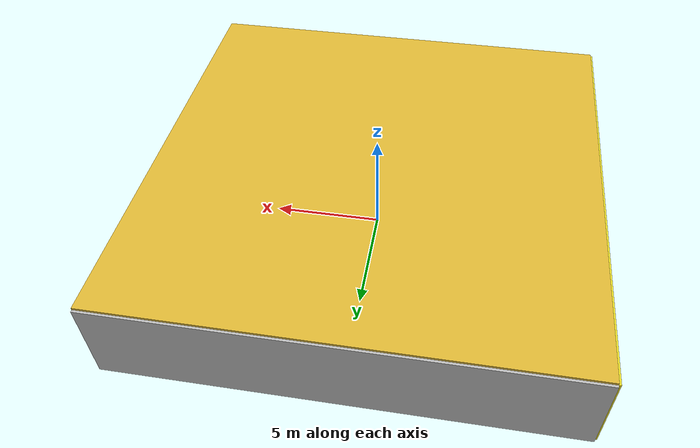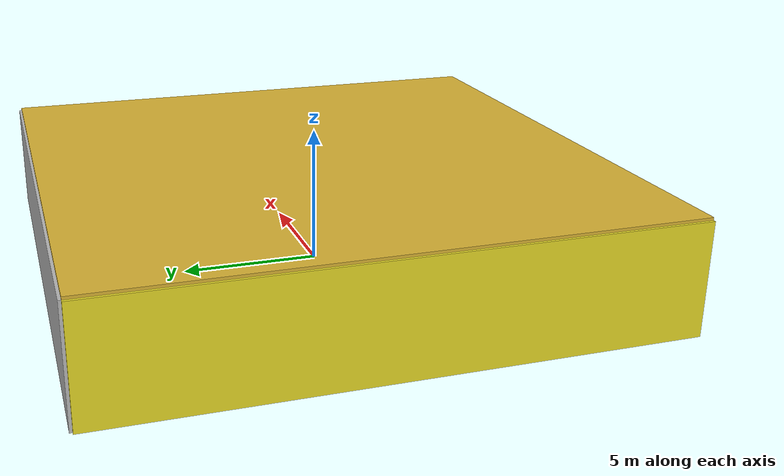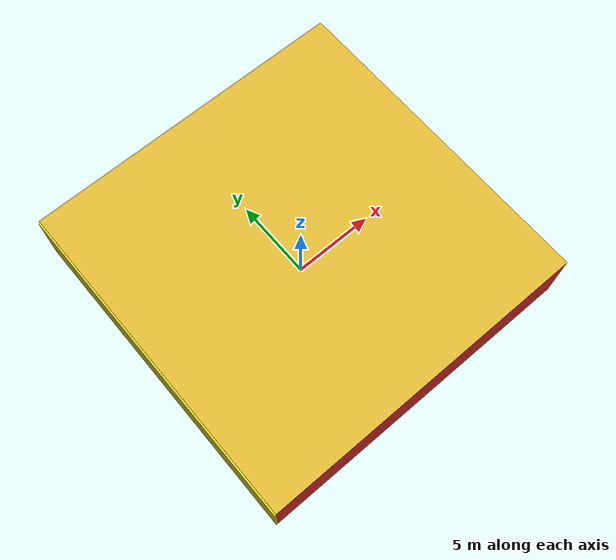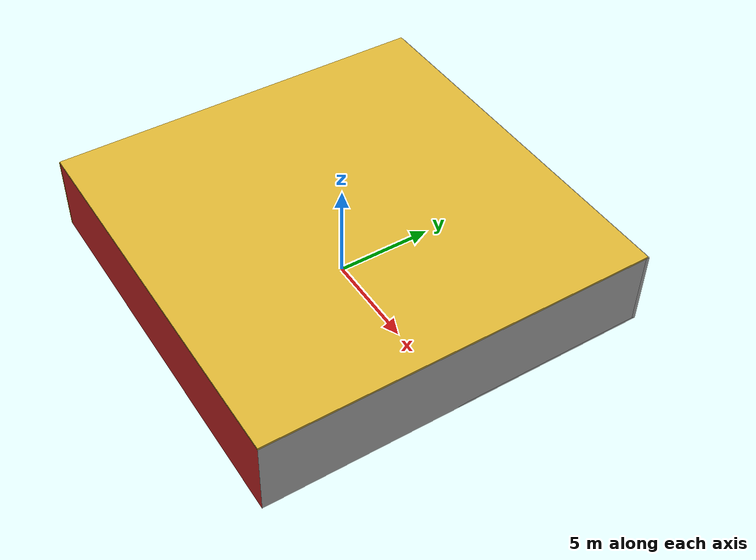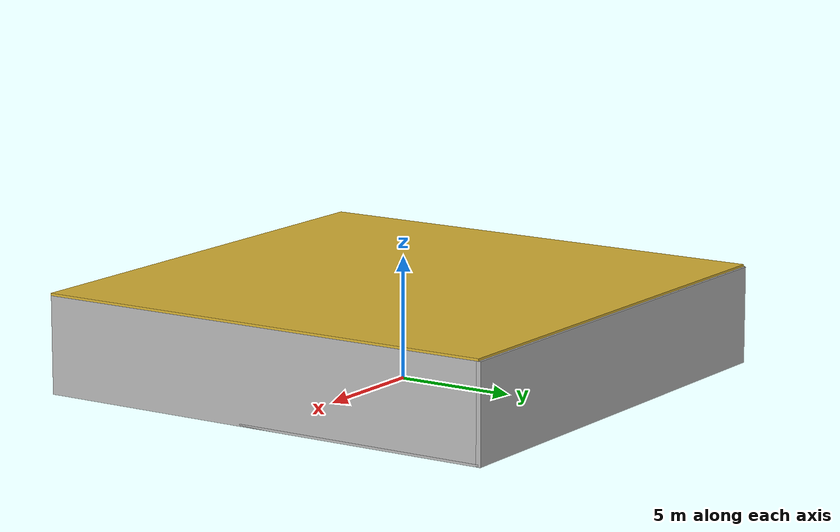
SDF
<sdf version="1.4">
 <world name="default">
  <physics type="ode">
   <max_step_size>0.001</max_step_size>
   <real_time_factor>1</real_time_factor>
   <real_time_update_rate>1000</real_time_update_rate>
   <gravity>0 0 -9.8</gravity>
  </physics>
  <scene><ambient>0.4 0.4 0.4 1</ambient><background>0.7 0.7 0.7 1</background><shadows>1</shadows></scene>
  <model name="Surrounding">
   <static>1</static>
   <link name="Ceiling">
    <collision name="Ceiling_Collision"><geometry><box><size>20 20 0.1</size></box></geometry></collision>
    <visual name="Ceiling_Visual">
     <geometry><box><size>20 20 0.1</size></box></geometry>
     <material>
      <script><uri>file://media/materials/scripts/gazebo.material</uri><name>Gazebo/Gold</name></script>
     </material>
    </visual>
    <pose>0 0 4.05 0 0 0</pose>
   </link>
   <link name="Wall_South">
    <collision name="Wall_South_Collision">
     <geometry><box><size>20 0 4</size></box></geometry>
     <pose>0 0 2 0 -0 0</pose>
    </collision>
    <visual name="Wall_South_Visual">
     <pose>0 0 2 0 -0 0</pose>
     <geometry><box><size>20 0 4</size></box></geometry>
     <material>
      <script><uri>file://media/materials/scripts/gazebo.material</uri><name>Gazebo/RedBright</name></script>
     </material>
    </visual>
    <velocity_decay><linear>0</linear><angular>0</angular></velocity_decay>
    <pose>0 -10 0 0 -0 0</pose>
   </link>
   <link name="Wall_East">
    <collision name="Wall_21_Collision">
     <geometry><box><size>20 0 4</size></box></geometry>
     <pose>0 0 2 0 -0 0</pose>
    </collision>
    <visual name="Wall_21_Visual">
     <pose>0 0 2 0 -0 0</pose>
     <geometry><box><size>20 0 4</size></box></geometry>
     <material>
      <script><uri>file://media/materials/scripts/gazebo.material</uri><name>Gazebo/LightOff</name></script>
     </material>
    </visual>
    <velocity_decay><linear>0</linear><angular>0</angular></velocity_decay>
    <pose>10 0 0 0 -0 1.5708</pose>
   </link>
   <link name="Wall_North">
    <collision name="Wall_22_Collision">
     <geometry><box><size>20 0.2 4</size></box></geometry>
     <pose>0 0 2 0 -0 0</pose>
    </collision>
    <visual name="Wall_22_Visual">
     <pose>0 0 2 0 -0 0</pose>
     <geometry><box><size>20 0.2 4</size></box></geometry>
     <material>
      <script><uri>file://media/materials/scripts/gazebo.material</uri><name>Gazebo/CloudySky</name></script>
     </material>
    </visual>
    <velocity_decay><linear>0</linear><angular>0</angular></velocity_decay>
    <pose>0 10 0 0 -0 0</pose>
   </link>
   <link name="Wall_West">
    <collision name="Wall_23_Collision">
     <geometry><box><size>20 0.2 4</size></box></geometry>
     <pose>0 0 2 0 -0 0</pose>
    </collision>
    <visual name="Wall_23_Visual">
     <pose>0 0 2 0 -0 0</pose>
     <geometry><box><size>20 0.2 4</size></box></geometry>
     <material>
      <script><uri>file://media/materials/scripts/gazebo.material</uri><name>Gazebo/YellowGlow</name></script>
     </material>
    </visual>
    <velocity_decay><linear>0</linear><angular>0</angular></velocity_decay>
    <pose>-10 0 0 0 0 -1.5708</pose>
   </link>
   <link name="Ground_link">
    <collision name="collision">
     <pose>0 0 .05 0 -0 0</pose>
     <geometry><box><size>20 20 0.1</size></box></geometry>
    </collision>
    <visual name="visual">
     <pose>0 0 .05 0 -0 0</pose>
     <geometry><box><size>20 20 0.1</size></box></geometry>
     <material>
      <script><uri>file://media/materials/scripts/gazebo.material</uri><name>Gazebo/JointAnchor</name></script>
     </material>
    </visual>
   </link>
   <static>1</static>
  </model>
  <spherical_coordinates>
   <surface_model>EARTH_WGS84</surface_model>
   <latitude_deg>0</latitude_deg>
   <longitude_deg>0</longitude_deg>
   <elevation>0</elevation>
   <heading_deg>0</heading_deg>
  </spherical_coordinates>
  <light name="lightball_0" type="diffuse">
   <diffuse>0.8 0.8 0.8 1</diffuse>
   <specular>0.2 0.2 0.2 1</specular>
   <attenuation>
    <range>100</range>
    <constant>0.7</constant>
    <linear>0.01</linear>
    <quadratic>0.001</quadratic>
   </attenuation>
   <direction>-0.5 0.1 -0.9</direction>
   <pose>-8.51415654199 -2.89174227931 0.684856085587 0 0 0</pose>
  </light>
  <light name="lightball_1" type="diffuse">
   <diffuse>0.8 0.8 0.8 1</diffuse>
   <specular>0.2 0.2 0.2 1</specular>
   <attenuation>
    <range>100</range>
    <constant>0.7</constant>
    <linear>0.01</linear>
    <quadratic>0.001</quadratic>
   </attenuation>
   <direction>-0.5 0.1 -0.9</direction>
   <pose>2.20396495242 7.31910371436 2.01847978502 0 0 0</pose>
  </light>
  <light name="lightball_2" type="diffuse">
   <diffuse>0.8 0.8 0.8 1</diffuse>
   <specular>0.2 0.2 0.2 1</specular>
   <attenuation>
    <range>100</range>
    <constant>0.7</constant>
    <linear>0.01</linear>
    <quadratic>0.001</quadratic>
   </attenuation>
   <direction>-0.5 0.1 -0.9</direction>
   <pose>9.00776829208 -8.51847431031 0.951160836164 0 0 0</pose>
  </light>
  <light name="lightball_3" type="diffuse">
   <diffuse>0.8 0.8 0.8 1</diffuse>
   <specular>0.2 0.2 0.2 1</specular>
   <attenuation>
    <range>100</range>
    <constant>0.7</constant>
    <linear>0.01</linear>
    <quadratic>0.001</quadratic>
   </attenuation>
   <direction>-0.5 0.1 -0.9</direction>
   <pose>6.57362033521 -0.183699439346 2.94761290551 0 0 0</pose>
  </light>
  <light name="lightball_4" type="diffuse">
   <diffuse>0.8 0.8 0.8 1</diffuse>
   <specular>0.2 0.2 0.2 1</specular>
   <attenuation>
    <range>100</range>
    <constant>0.7</constant>
    <linear>0.01</linear>
    <quadratic>0.001</quadratic>
   </attenuation>
   <direction>-0.5 0.1 -0.9</direction>
   <pose>8.15368950942 -5.60486136772 0.864621891556 0 0 0</pose>
  </light>
  <light name="lightball_5" type="diffuse">
   <diffuse>0.8 0.8 0.8 1</diffuse>
   <specular>0.2 0.2 0.2 1</specular>
   <attenuation>
    <range>100</range>
    <constant>0.7</constant>
    <linear>0.01</linear>
    <quadratic>0.001</quadratic>
   </attenuation>
   <direction>-0.5 0.1 -0.9</direction>
   <pose>2.31003635273 2.99178955635 2.6370268136 0 0 0</pose>
  </light>
  <light name="lightball_6" type="diffuse">
   <diffuse>0.8 0.8 0.8 1</diffuse>
   <specular>0.2 0.2 0.2 1</specular>
   <attenuation>
    <range>100</range>
    <constant>0.7</constant>
    <linear>0.01</linear>
    <quadratic>0.001</quadratic>
   </attenuation>
   <direction>-0.5 0.1 -0.9</direction>
   <pose>-2.57632806766 1.62300331799 1.56432461757 0 0 0</pose>
  </light>
  <light name="lightball_7" type="diffuse">
   <diffuse>0.8 0.8 0.8 1</diffuse>
   <specular>0.2 0.2 0.2 1</specular>
   <attenuation>
    <range>100</range>
    <constant>0.7</constant>
    <linear>0.01</linear>
    <quadratic>0.001</quadratic>
   </attenuation>
   <direction>-0.5 0.1 -0.9</direction>
   <pose>-0.490970127347 9.60706666071 1.51155562463 0 0 0</pose>
  </light>
  <light name="lightball_8" type="diffuse">
   <diffuse>0.8 0.8 0.8 1</diffuse>
   <specular>0.2 0.2 0.2 1</specular>
   <attenuation>
    <range>100</range>
    <constant>0.7</constant>
    <linear>0.01</linear>
    <quadratic>0.001</quadratic>
   </attenuation>
   <direction>-0.5 0.1 -0.9</direction>
   <pose>4.99873428537 7.47915272946 3.38955020463 0 0 0</pose>
  </light>
  <light name="lightball_9" type="diffuse">
   <diffuse>0.8 0.8 0.8 1</diffuse>
   <specular>0.2 0.2 0.2 1</specular>
   <attenuation>
    <range>100</range>
    <constant>0.7</constant>
    <linear>0.01</linear>
    <quadratic>0.001</quadratic>
   </attenuation>
   <direction>-0.5 0.1 -0.9</direction>
   <pose>-4.69570063199 -5.05943969468 2.00982913356 0 0 0</pose>
  </light>
  <light name="lightball_10" type="diffuse">
   <diffuse>0.8 0.8 0.8 1</diffuse>
   <specular>0.2 0.2 0.2 1</specular>
   <attenuation>
    <range>100</range>
    <constant>0.7</constant>
    <linear>0.01</linear>
    <quadratic>0.001</quadratic>
   </attenuation>
   <direction>-0.5 0.1 -0.9</direction>
   <pose>-5.94333138078 1.53920268089 3.61981340008 0 0 0</pose>
  </light>
  <light name="lightball_11" type="diffuse">
   <diffuse>0.8 0.8 0.8 1</diffuse>
   <specular>0.2 0.2 0.2 1</specular>
   <attenuation>
    <range>100</range>
    <constant>0.7</constant>
    <linear>0.01</linear>
    <quadratic>0.001</quadratic>
   </attenuation>
   <direction>-0.5 0.1 -0.9</direction>
   <pose>0.129701410146 7.92999637161 2.07422192498 0 0 0</pose>
  </light>
  <light name="lightball_12" type="diffuse">
   <diffuse>0.8 0.8 0.8 1</diffuse>
   <specular>0.2 0.2 0.2 1</specular>
   <attenuation>
    <range>100</range>
    <constant>0.7</constant>
    <linear>0.01</linear>
    <quadratic>0.001</quadratic>
   </attenuation>
   <direction>-0.5 0.1 -0.9</direction>
   <pose>9.85359576124 3.36991789154 0.935876595409 0 0 0</pose>
  </light>
  <include><uri>model://cabinet</uri><pose>-8.66862606465 -1.05370969665 0 0 0 1.87829415707</pose></include>
  <include>
   <uri>model://construction_cone</uri>
   <pose>2.21348972866 0.95666558102 0 0 0 2.26193225517</pose>
  </include>
  <include><uri>model://table</uri><pose>4.43691753135 -0.569067190462 0 0 0 0.718344095644</pose></include>
  <include>
   <uri>model://construction_cone</uri>
   <pose>4.84037783829 7.39477176064 0 0 0 0.680085266163</pose>
  </include>
  <include><uri>model://table</uri><pose>8.6625583201 4.03909605506 0 0 0 1.4213880792</pose></include>
 </world>
</sdf>

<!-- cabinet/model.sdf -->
<sdf version="1.5">
  <model name="cabinet">
    <static>true</static>
    <link name="cabinet_bottom_plate">
      <inertial>
        <pose>0 0 -1 0 0 0</pose>
        <inertia>
          <ixx>2.050000</ixx>
          <ixy>0</ixy>
          <ixz>0</ixz>
          <iyy>2.050000</iyy>
          <iyz>0</iyz>
          <izz>2.050000</izz>
        </inertia>
        <mass>25.000000</mass>
      </inertial>
      <collision name="cabinet_bottom_plate_geom">
        <pose>0 0 0.010000 0 0 0</pose>
        <geometry>
          <box>
            <size>0.450000 0.450000 0.020000</size>
          </box>
        </geometry>
      </collision>
      <visual name="cabinet_bottom_plate_geom_visual">
        <pose>0 0 0.010000 0 0 0</pose>
        <geometry>
          <box>
            <size>0.450000 0.450000 0.020000</size>
          </box>
        </geometry>
        <material>
          <script>
            <uri>model://media/materials/scripts/gazebo.material</uri>
            <name>Gazebo/Wood</name>
          </script>
        </material>
      </visual>
      <collision name="cabinet_bottom_plate_geom_cabinet_back_plate">
        <pose>0.235000 0 0.510000 0 0 0</pose>
        <geometry>
          <box>
            <size>0.020000 0.450000 1.020000</size>
          </box>
        </geometry>
      </collision>
      <visual name="cabinet_bottom_plate_geom_cabinet_back_plate_visual">
        <pose>0.235000 0 0.510000 0 0 0</pose>
        <geometry>
          <box>
            <size>0.020000 0.450000 1.020000</size>
          </box>
        </geometry>
        <material>
          <script>
            <uri>model://media/materials/scripts/gazebo.material</uri>
            <name>Gazebo/Wood</name>
          </script>
        </material>
      </visual>
      <collision name="cabinet_bottom_plate_geom_cabinet_left_plate">
        <pose>0 0.235000 0.510000 0 0 0</pose>
        <geometry>
          <box>
            <size>0.450000 0.020000 1.020000</size>
          </box>
        </geometry>
      </collision>
      <visual name="cabinet_bottom_plate_geom_cabinet_left_plate_visual">
        <pose>0 0.235000 0.510000 0 0 0</pose>
        <geometry>
          <box>
            <size>0.450000 0.020000 1.020000</size>
          </box>
        </geometry>
        <material>
          <script>
            <uri>model://media/materials/scripts/gazebo.material</uri>
            <name>Gazebo/Wood</name>
          </script>
        </material>
      </visual>
      <collision name="cabinet_bottom_plate_geom_cabinet_middle_plate">
        <pose>0 0 0.510000 0 0 0</pose>
        <geometry>
          <box>
            <size>0.450000 0.450000 0.020000</size>
          </box>
        </geometry>
      </collision>
      <visual name="cabinet_bottom_plate_geom_cabinet_middle_plate_visual">
        <pose>0 0 0.510000 0 0 0</pose>
        <geometry>
          <box>
            <size>0.450000 0.450000 0.020000</size>
          </box>
        </geometry>
        <material>
          <script>
            <uri>model://media/materials/scripts/gazebo.material</uri>
            <name>Gazebo/Wood</name>
          </script>
        </material>
      </visual>
      <collision name="cabinet_bottom_plate_geom_cabinet_right_plate">
        <pose>0 -0.235000 0.510000 0 0 0</pose>
        <geometry>
          <box>
            <size>0.450000 0.020000 1.020000</size>
          </box>
        </geometry>
      </collision>
      <visual name="cabinet_bottom_plate_geom_cabinet_right_plate_visual">
        <pose>0 -0.235000 0.510000 0 0 0</pose>
        <geometry>
          <box>
            <size>0.450000 0.020000 1.020000</size>
          </box>
        </geometry>
        <material>
          <script>
            <uri>model://media/materials/scripts/gazebo.material</uri>
            <name>Gazebo/Wood</name>
          </script>
        </material>
      </visual>
      <collision name="cabinet_bottom_plate_geom_cabinet_top_plate">
        <pose>0 0 1.010000 0 0 0</pose>
        <geometry>
          <box>
            <size>0.450000 0.450000 0.020000</size>
          </box>
        </geometry>
      </collision>
      <visual name="cabinet_bottom_plate_geom_cabinet_top_plate_visual">
        <pose>0 0 1.010000 0 0 0</pose>
        <geometry>
          <box>
            <size>0.450000 0.450000 0.020000</size>
          </box>
        </geometry>
        <material>
          <script>
            <uri>model://media/materials/scripts/gazebo.material</uri>
            <name>Gazebo/Wood</name>
          </script>
        </material>
      </visual>
    </link>
  </model>
</sdf>

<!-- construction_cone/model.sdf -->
<sdf version="1.5">
  <model name="Construction Cone">
    <link name="link">
      <collision name="collision">
        <geometry>
          <mesh>
            <scale>10 10 10</scale>
            <uri>file://isr-testbed/construction_cone/meshes/construction_cone.dae</uri>
          </mesh>
        </geometry>
      </collision>
      <visual name="visual">
        <geometry>
          <mesh>
            <scale>10 10 10</scale>
            <uri>file://isr-testbed/construction_cone/meshes/construction_cone.dae</uri>
          </mesh>
        </geometry>
      </visual>
    </link>
  </model>
</sdf>

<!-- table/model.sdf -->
<sdf version="1.5">
  <model name="table">
    <static>true</static>
    <link name="link">
      <collision name="surface">
        <pose>0 0 1.0 0 0 0</pose>
        <geometry>
          <box>
            <size>1.5 0.8 0.03</size>
          </box>
        </geometry>
        <surface>
          <friction>
            <ode>
              <mu>0.6</mu>
              <mu2>0.6</mu2>
            </ode>
          </friction>
        </surface>
      </collision>
      <visual name="visual1">
        <pose>0 0 1.0 0 0 0</pose>
        <geometry>
          <box>
            <size>1.5 0.8 0.03</size>
          </box>
        </geometry>
        <material>
          <script>
            <uri>model://media/materials/scripts/gazebo.material</uri>
            <name>Gazebo/Wood</name>
          </script>
        </material>
      </visual>
      <collision name="front_left_leg">
        <pose>0.68 0.38 0.5 0 0 0</pose>
        <geometry>
          <cylinder>
            <radius>0.02</radius>
            <length>1.0</length>
          </cylinder>
        </geometry>
      </collision>
      <visual name="front_left_leg">
        <pose>0.68 0.38 0.5 0 0 0</pose>
        <geometry>
          <cylinder>
            <radius>0.02</radius>
            <length>1.0</length>
          </cylinder>
        </geometry>
        <material>
          <script>
            <uri>model://media/materials/scripts/gazebo.material</uri>
            <name>Gazebo/Grey</name>
          </script>
        </material>
      </visual>
      <collision name="front_right_leg">
        <pose>0.68 -0.38 0.5 0 0 0</pose>
        <geometry>
          <cylinder>
            <radius>0.02</radius>
            <length>1.0</length>
          </cylinder>
        </geometry>
      </collision>
      <visual name="front_right_leg">
        <pose>0.68 -0.38 0.5 0 0 0</pose>
        <geometry>
          <cylinder>
            <radius>0.02</radius>
            <length>1.0</length>
          </cylinder>
        </geometry>
        <material>
          <script>
            <uri>model://media/materials/scripts/gazebo.material</uri>
            <name>Gazebo/Grey</name>
          </script>
        </material>
      </visual>
      <collision name="back_right_leg">
        <pose>-0.68 -0.38 0.5 0 0 0</pose>
        <geometry>
          <cylinder>
            <radius>0.02</radius>
            <length>1.0</length>
          </cylinder>
        </geometry>
      </collision>
      <visual name="back_right_leg">
        <pose>-0.68 -0.38 0.5 0 0 0</pose>
        <geometry>
          <cylinder>
            <radius>0.02</radius>
            <length>1.0</length>
          </cylinder>
        </geometry>
        <material>
          <script>
            <uri>model://media/materials/scripts/gazebo.material</uri>
            <name>Gazebo/Grey</name>
          </script>
        </material>
      </visual>
      <collision name="back_left_leg">
        <pose>-0.68 0.38 0.5 0 0 0</pose>
        <geometry>
          <cylinder>
            <radius>0.02</radius>
            <length>1.0</length>
          </cylinder>
        </geometry>
      </collision>
      <visual name="back_left_leg">
        <pose>-0.68 0.38 0.5 0 0 0</pose>
        <geometry>
          <cylinder>
            <radius>0.02</radius>
            <length>1.0</length>
          </cylinder>
        </geometry>
        <material>
          <script>
            <uri>model://media/materials/scripts/gazebo.material</uri>
            <name>Gazebo/Grey</name>
          </script>
        </material>
      </visual>
    </link>
  </model>
</sdf>
